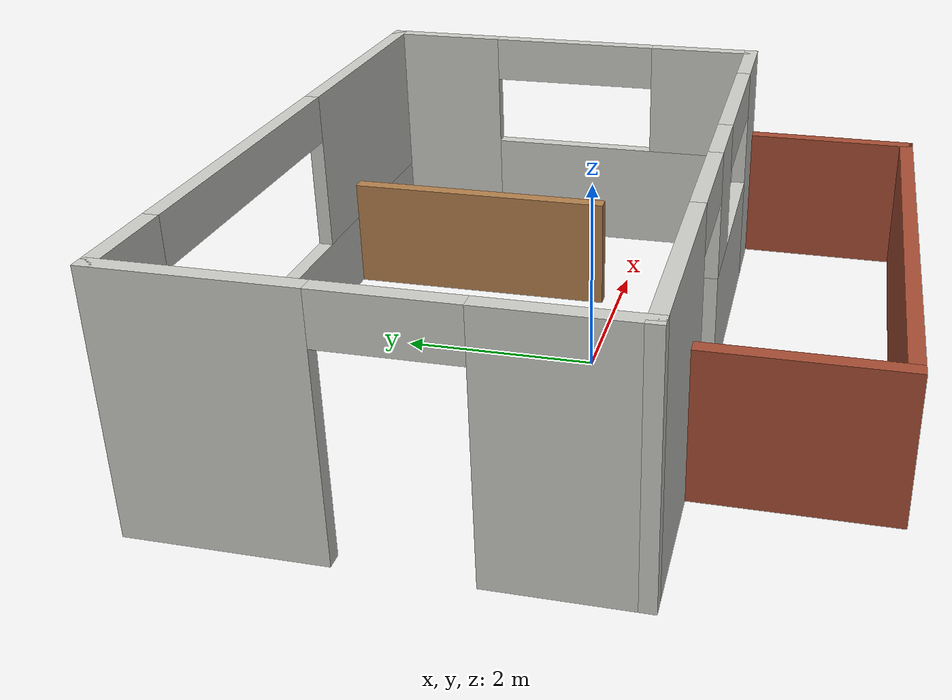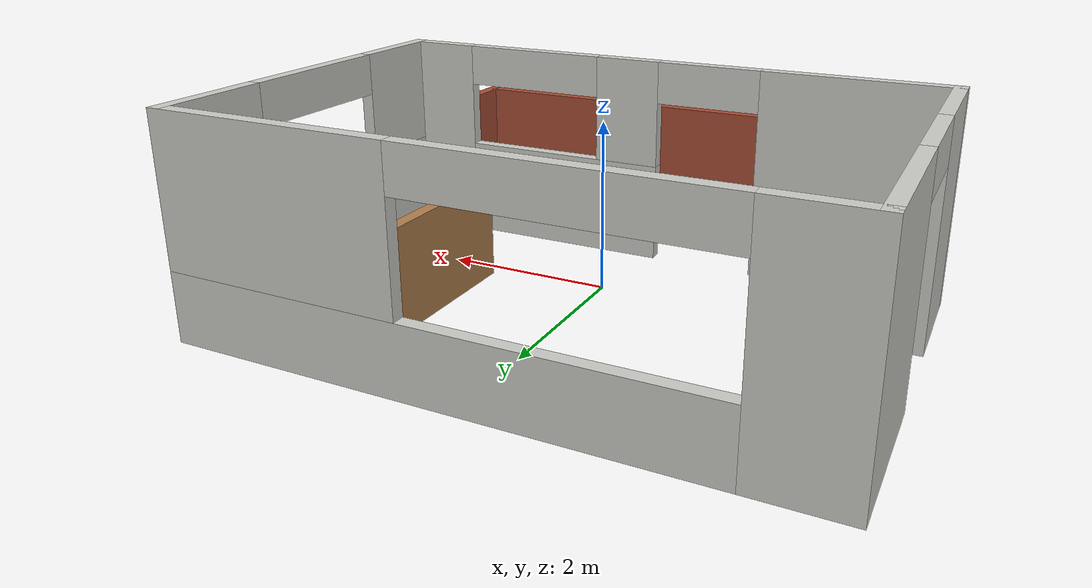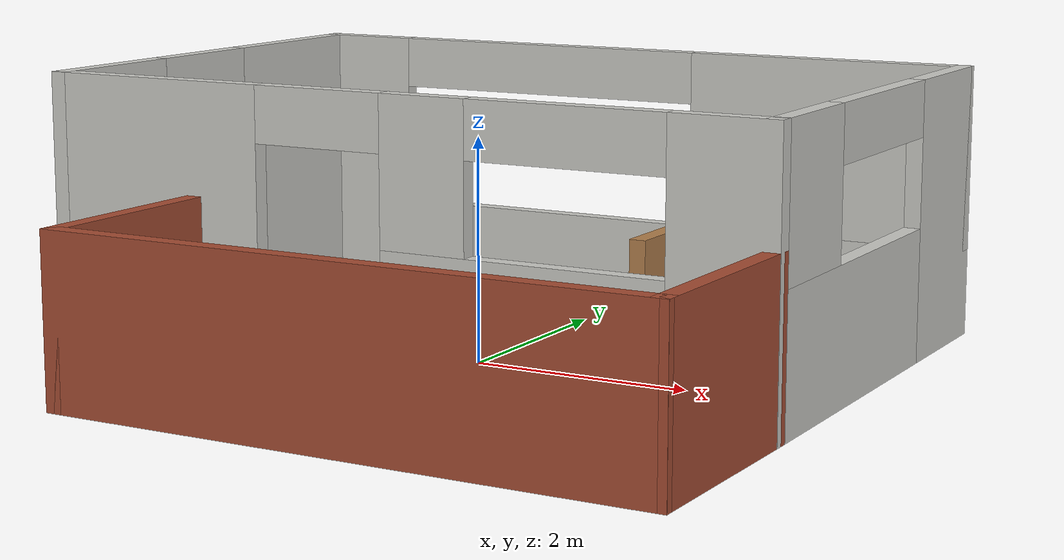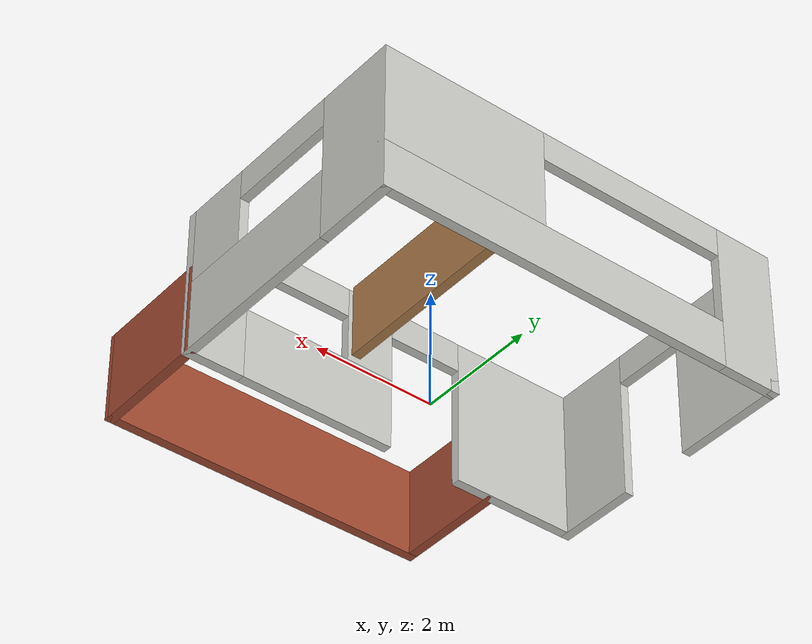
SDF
<?xml version='1.0'?>
<sdf version='1.6'>
  <model name='my_world_model'>
    <pose frame=''>-0.144603 0.024603 0 0 -0 0</pose>
    <link name='Wall_0'>
      <pose frame=''>-0.000397 3.1154 0 0 -0 0</pose>
      <visual name='Wall_0_Visual_0'>
        <pose frame=''>-2.99544 0 1.25 0 -0 0</pose>
        <geometry>
          <box>
            <size>1.00913 0.15 2.5</size>
          </box>
        </geometry>
        <material>
          <script>
            <uri>file://media/materials/scripts/gazebo.material</uri>
            <name>Gazebo/CeilingTiled</name>
          </script>
          <ambient>1 1 1 1</ambient>
        </material>
        <meta>
          <layer>0</layer>
        </meta>
      </visual>
      <collision name='Wall_0_Collision_0'>
        <geometry>
          <box>
            <size>1.00913 0.15 2.5</size>
          </box>
        </geometry>
        <pose frame=''>-2.99544 0 1.25 0 -0 0</pose>
      </collision>
      <visual name='Wall_0_Visual_1'>
        <pose frame=''>0.504565 0 0.4 0 -0 0</pose>
        <geometry>
          <box>
            <size>5.99087 0.15 0.8</size>
          </box>
        </geometry>
        <material>
          <script>
            <uri>file://media/materials/scripts/gazebo.material</uri>
            <name>Gazebo/CeilingTiled</name>
          </script>
          <ambient>1 1 1 1</ambient>
        </material>
        <meta>
          <layer>0</layer>
        </meta>
      </visual>
      <collision name='Wall_0_Collision_1'>
        <geometry>
          <box>
            <size>5.99087 0.15 0.8</size>
          </box>
        </geometry>
        <pose frame=''>0.504565 0 0.4 0 -0 0</pose>
      </collision>
      <visual name='Wall_0_Visual_2'>
        <pose frame=''>2.11957 0 1.65 0 -0 0</pose>
        <geometry>
          <box>
            <size>2.76087 0.15 1.7</size>
          </box>
        </geometry>
        <material>
          <script>
            <uri>file://media/materials/scripts/gazebo.material</uri>
            <name>Gazebo/CeilingTiled</name>
          </script>
          <ambient>1 1 1 1</ambient>
        </material>
        <meta>
          <layer>0</layer>
        </meta>
      </visual>
      <collision name='Wall_0_Collision_2'>
        <geometry>
          <box>
            <size>2.76087 0.15 1.7</size>
          </box>
        </geometry>
        <pose frame=''>2.11957 0 1.65 0 -0 0</pose>
      </collision>
      <visual name='Wall_0_Visual_3'>
        <pose frame=''>-0.87587 0 2.25 0 -0 0</pose>
        <geometry>
          <box>
            <size>3.23 0.15 0.5</size>
          </box>
        </geometry>
        <material>
          <script>
            <uri>file://media/materials/scripts/gazebo.material</uri>
            <name>Gazebo/CeilingTiled</name>
          </script>
          <ambient>1 1 1 1</ambient>
        </material>
        <meta>
          <layer>0</layer>
        </meta>
      </visual>
      <collision name='Wall_0_Collision_3'>
        <geometry>
          <box>
            <size>3.23 0.15 0.5</size>
          </box>
        </geometry>
        <pose frame=''>-0.87587 0 2.25 0 -0 0</pose>
      </collision>
    </link>
    <link name='Wall_1'>
      <pose frame=''>3.4246 0.940397 0 0 0 -1.5708</pose>
      <visual name='Wall_1_Visual_0'>
        <pose frame=''>-1.5725 0 1.25 0 -0 0</pose>
        <geometry>
          <box>
            <size>1.355 0.15 2.5</size>
          </box>
        </geometry>
        <material>
          <script>
            <uri>file://media/materials/scripts/gazebo.material</uri>
            <name>Gazebo/CeilingTiled</name>
          </script>
          <ambient>1 1 1 1</ambient>
        </material>
        <meta>
          <layer>0</layer>
        </meta>
      </visual>
      <collision name='Wall_1_Collision_0'>
        <geometry>
          <box>
            <size>1.355 0.15 2.5</size>
          </box>
        </geometry>
        <pose frame=''>-1.5725 0 1.25 0 -0 0</pose>
      </collision>
      <visual name='Wall_1_Visual_1'>
        <pose frame=''>0.6775 0 0.6 0 -0 0</pose>
        <geometry>
          <box>
            <size>3.145 0.15 1.2</size>
          </box>
        </geometry>
        <material>
          <script>
            <uri>file://media/materials/scripts/gazebo.material</uri>
            <name>Gazebo/CeilingTiled</name>
          </script>
          <ambient>1 1 1 1</ambient>
        </material>
        <meta>
          <layer>0</layer>
        </meta>
      </visual>
      <collision name='Wall_1_Collision_1'>
        <geometry>
          <box>
            <size>3.145 0.15 1.2</size>
          </box>
        </geometry>
        <pose frame=''>0.6775 0 0.6 0 -0 0</pose>
      </collision>
      <visual name='Wall_1_Visual_2'>
        <pose frame=''>1.6275 0 1.85 0 -0 0</pose>
        <geometry>
          <box>
            <size>1.245 0.15 1.3</size>
          </box>
        </geometry>
        <material>
          <script>
            <uri>file://media/materials/scripts/gazebo.material</uri>
            <name>Gazebo/CeilingTiled</name>
          </script>
          <ambient>1 1 1 1</ambient>
        </material>
        <meta>
          <layer>0</layer>
        </meta>
      </visual>
      <collision name='Wall_1_Collision_2'>
        <geometry>
          <box>
            <size>1.245 0.15 1.3</size>
          </box>
        </geometry>
        <pose frame=''>1.6275 0 1.85 0 -0 0</pose>
      </collision>
      <visual name='Wall_1_Visual_3'>
        <pose frame=''>0.055 0 2.25 0 -0 0</pose>
        <geometry>
          <box>
            <size>1.9 0.15 0.5</size>
          </box>
        </geometry>
        <material>
          <script>
            <uri>file://media/materials/scripts/gazebo.material</uri>
            <name>Gazebo/CeilingTiled</name>
          </script>
          <ambient>1 1 1 1</ambient>
        </material>
        <meta>
          <layer>0</layer>
        </meta>
      </visual>
      <collision name='Wall_1_Collision_3'>
        <geometry>
          <box>
            <size>1.9 0.15 0.5</size>
          </box>
        </geometry>
        <pose frame=''>0.055 0 2.25 0 -0 0</pose>
      </collision>
    </link>
    <link name='Wall_2'>
      <pose frame=''>-0.000397 -1.2346 0 0 -0 3.14159</pose>
      <visual name='Wall_2_Visual_0'>
        <pose frame=''>-3.02478 0 1.25 0 -0 0</pose>
        <geometry>
          <box>
            <size>0.950435 0.15 2.5</size>
          </box>
        </geometry>
        <material>
          <script>
            <uri>file://media/materials/scripts/gazebo.material</uri>
            <name>Gazebo/CeilingTiled</name>
          </script>
          <ambient>1 1 1 1</ambient>
        </material>
        <meta>
          <layer>0</layer>
        </meta>
      </visual>
      <collision name='Wall_2_Collision_0'>
        <geometry>
          <box>
            <size>0.950435 0.15 2.5</size>
          </box>
        </geometry>
        <pose frame=''>-3.02478 0 1.25 0 -0 0</pose>
      </collision>
      <visual name='Wall_2_Visual_1'>
        <pose frame=''>2.3925 0 1.25 0 -0 0</pose>
        <geometry>
          <box>
            <size>2.215 0.15 2.5</size>
          </box>
        </geometry>
        <material>
          <script>
            <uri>file://media/materials/scripts/gazebo.material</uri>
            <name>Gazebo/CeilingTiled</name>
          </script>
          <ambient>1 1 1 1</ambient>
        </material>
        <meta>
          <layer>0</layer>
        </meta>
      </visual>
      <collision name='Wall_2_Collision_1'>
        <geometry>
          <box>
            <size>2.215 0.15 2.5</size>
          </box>
        </geometry>
        <pose frame=''>2.3925 0 1.25 0 -0 0</pose>
      </collision>
      <visual name='Wall_2_Visual_2'>
        <pose frame=''>-1.25228 0 0.6 0 -0 0</pose>
        <geometry>
          <box>
            <size>2.59456 0.15 1.2</size>
          </box>
        </geometry>
        <material>
          <script>
            <uri>file://media/materials/scripts/gazebo.material</uri>
            <name>Gazebo/CeilingTiled</name>
          </script>
          <ambient>1 1 1 1</ambient>
        </material>
        <meta>
          <layer>0</layer>
        </meta>
      </visual>
      <collision name='Wall_2_Collision_2'>
        <geometry>
          <box>
            <size>2.59456 0.15 1.2</size>
          </box>
        </geometry>
        <pose frame=''>-1.25228 0 0.6 0 -0 0</pose>
      </collision>
      <visual name='Wall_2_Visual_3'>
        <pose frame=''>-0.357283 0 1.85 0 -0 0</pose>
        <geometry>
          <box>
            <size>0.804565 0.15 1.3</size>
          </box>
        </geometry>
        <material>
          <script>
            <uri>file://media/materials/scripts/gazebo.material</uri>
            <name>Gazebo/CeilingTiled</name>
          </script>
          <ambient>1 1 1 1</ambient>
        </material>
        <meta>
          <layer>0</layer>
        </meta>
      </visual>
      <collision name='Wall_2_Collision_3'>
        <geometry>
          <box>
            <size>0.804565 0.15 1.3</size>
          </box>
        </geometry>
        <pose frame=''>-0.357283 0 1.85 0 -0 0</pose>
      </collision>
      <visual name='Wall_2_Visual_4'>
        <pose frame=''>0.665 0 2.25 0 -0 0</pose>
        <geometry>
          <box>
            <size>1.24 0.15 0.5</size>
          </box>
        </geometry>
        <material>
          <script>
            <uri>file://media/materials/scripts/gazebo.material</uri>
            <name>Gazebo/CeilingTiled</name>
          </script>
          <ambient>1 1 1 1</ambient>
        </material>
        <meta>
          <layer>0</layer>
        </meta>
      </visual>
      <collision name='Wall_2_Collision_4'>
        <geometry>
          <box>
            <size>1.24 0.15 0.5</size>
          </box>
        </geometry>
        <pose frame=''>0.665 0 2.25 0 -0 0</pose>
      </collision>
      <visual name='Wall_2_Visual_5'>
        <pose frame=''>-1.65457 0 2.25 0 -0 0</pose>
        <geometry>
          <box>
            <size>1.79 0.15 0.5</size>
          </box>
        </geometry>
        <material>
          <script>
            <uri>file://media/materials/scripts/gazebo.material</uri>
            <name>Gazebo/CeilingTiled</name>
          </script>
          <ambient>1 1 1 1</ambient>
        </material>
        <meta>
          <layer>0</layer>
        </meta>
      </visual>
      <collision name='Wall_2_Collision_5'>
        <geometry>
          <box>
            <size>1.79 0.15 0.5</size>
          </box>
        </geometry>
        <pose frame=''>-1.65457 0 2.25 0 -0 0</pose>
      </collision>
    </link>
    <link name='Wall_3'>
      <pose frame=''>-3.4254 0.940397 0 0 -0 1.5708</pose>
      <visual name='Wall_3_Visual_0'>
        <pose frame=''>-1.5325 0 1.25 0 -0 0</pose>
        <geometry>
          <box>
            <size>1.435 0.15 2.5</size>
          </box>
        </geometry>
        <material>
          <script>
            <uri>file://media/materials/scripts/gazebo.material</uri>
            <name>Gazebo/CeilingTiled</name>
          </script>
          <ambient>1 1 1 1</ambient>
        </material>
        <meta>
          <layer>0</layer>
        </meta>
      </visual>
      <collision name='Wall_3_Collision_0'>
        <geometry>
          <box>
            <size>1.435 0.15 2.5</size>
          </box>
        </geometry>
        <pose frame=''>-1.5325 0 1.25 0 -0 0</pose>
      </collision>
      <visual name='Wall_3_Visual_1'>
        <pose frame=''>1.3275 0 1.25 0 -0 0</pose>
        <geometry>
          <box>
            <size>1.845 0.15 2.5</size>
          </box>
        </geometry>
        <material>
          <script>
            <uri>file://media/materials/scripts/gazebo.material</uri>
            <name>Gazebo/CeilingTiled</name>
          </script>
          <ambient>1 1 1 1</ambient>
        </material>
        <meta>
          <layer>0</layer>
        </meta>
      </visual>
      <collision name='Wall_3_Collision_1'>
        <geometry>
          <box>
            <size>1.845 0.15 2.5</size>
          </box>
        </geometry>
        <pose frame=''>1.3275 0 1.25 0 -0 0</pose>
      </collision>
      <visual name='Wall_3_Visual_2'>
        <pose frame=''>-0.205 0 2.25 0 -0 0</pose>
        <geometry>
          <box>
            <size>1.22 0.15 0.5</size>
          </box>
        </geometry>
        <material>
          <script>
            <uri>file://media/materials/scripts/gazebo.material</uri>
            <name>Gazebo/CeilingTiled</name>
          </script>
          <ambient>1 1 1 1</ambient>
        </material>
        <meta>
          <layer>0</layer>
        </meta>
      </visual>
      <collision name='Wall_3_Collision_2'>
        <geometry>
          <box>
            <size>1.22 0.15 0.5</size>
          </box>
        </geometry>
        <pose frame=''>-0.205 0 2.25 0 -0 0</pose>
      </collision>
    </link>
    <link name='Wall_5'>
      <collision name='Wall_5_Collision'>
        <geometry>
          <box>
            <size>2 0.15 1.5</size>
          </box>
        </geometry>
        <pose frame=''>0 0 0.75 0 -0 0</pose>
      </collision>
      <visual name='Wall_5_Visual'>
        <pose frame=''>0 0 0.75 0 -0 0</pose>
        <geometry>
          <box>
            <size>2 0.15 1.5</size>
          </box>
        </geometry>
        <material>
          <script>
            <uri>file://media/materials/scripts/gazebo.material</uri>
            <name>Gazebo/Bricks</name>
          </script>
          <ambient>1 1 1 1</ambient>
        </material>
        <meta>
          <layer>0</layer>
        </meta>
      </visual>
      <pose frame=''>-1.9454 -2.1896 0 0 0 -1.5708</pose>
    </link>
    <link name='Wall_6'>
      <collision name='Wall_6_Collision'>
        <geometry>
          <box>
            <size>5.5 0.15 1.5</size>
          </box>
        </geometry>
        <pose frame=''>0 0 0.75 0 -0 0</pose>
      </collision>
      <visual name='Wall_6_Visual'>
        <pose frame=''>0 0 0.75 0 -0 0</pose>
        <geometry>
          <box>
            <size>5.5 0.15 1.5</size>
          </box>
        </geometry>
        <material>
          <script>
            <uri>file://media/materials/scripts/gazebo.material</uri>
            <name>Gazebo/Bricks</name>
          </script>
          <ambient>1 1 1 1</ambient>
        </material>
        <meta>
          <layer>0</layer>
        </meta>
      </visual>
      <pose frame=''>0.729603 -3.1146 0 0 -0 0</pose>
    </link>
    <link name='Wall_7'>
      <collision name='Wall_7_Collision'>
        <geometry>
          <box>
            <size>2.03011 0.15 1.5</size>
          </box>
        </geometry>
        <pose frame=''>0 0 0.75 0 -0 0</pose>
      </collision>
      <visual name='Wall_7_Visual'>
        <pose frame=''>0 0 0.75 0 -0 0</pose>
        <geometry>
          <box>
            <size>2.03011 0.15 1.5</size>
          </box>
        </geometry>
        <material>
          <script>
            <uri>file://media/materials/scripts/gazebo.material</uri>
            <name>Gazebo/Bricks</name>
          </script>
          <ambient>1 1 1 1</ambient>
        </material>
        <meta>
          <layer>0</layer>
        </meta>
      </visual>
      <pose frame=''>3.4146 -2.1746 0 0 -0 1.56016</pose>
    </link>
    <link name='Wall_9'>
      <collision name='Wall_9_Collision'>
        <geometry>
          <box>
            <size>3 0.15 1.2</size>
          </box>
        </geometry>
        <pose frame=''>0 0 0.6 0 -0 0</pose>
      </collision>
      <visual name='Wall_9_Visual'>
        <pose frame=''>0 0 0.6 0 -0 0</pose>
        <geometry>
          <box>
            <size>3 0.15 1.2</size>
          </box>
        </geometry>
        <material>
          <script>
            <uri>file://media/materials/scripts/gazebo.material</uri>
            <name>Gazebo/Wood</name>
          </script>
          <ambient>1 1 1 1</ambient>
        </material>
        <meta>
          <layer>0</layer>
        </meta>
      </visual>
      <pose frame=''>1.5946 1.6504 0 0 0 -1.5708</pose>
    </link>
    <static>1</static>
  </model>
</sdf>
